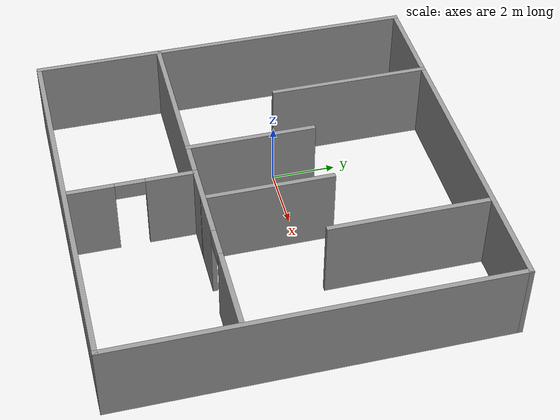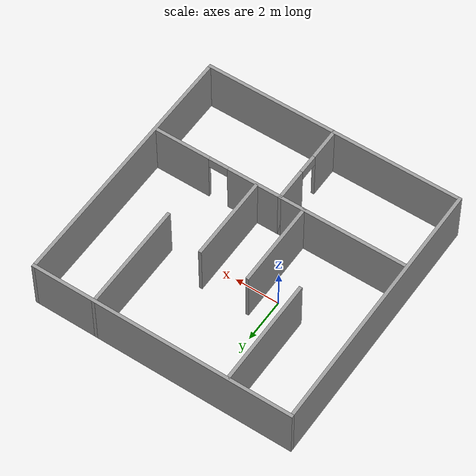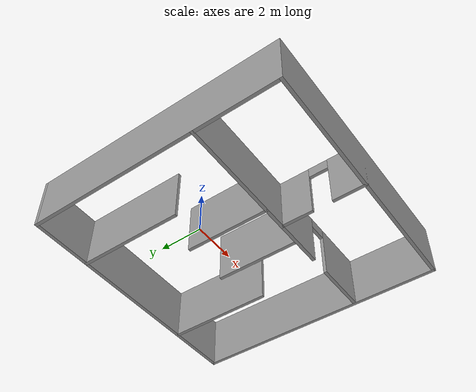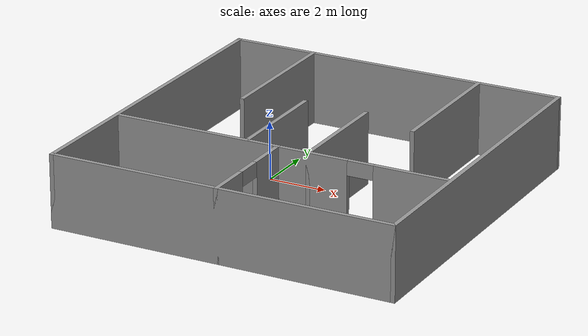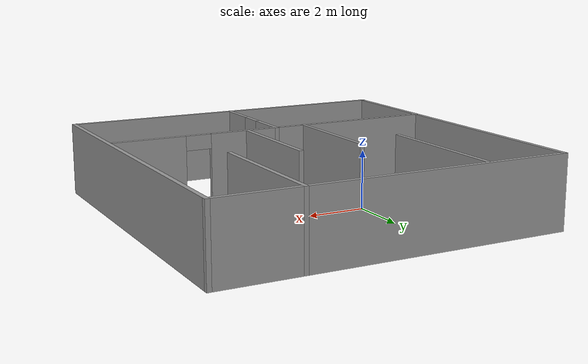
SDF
<?xml version='1.0'?>
<sdf version='1.6'>
  <model name='Lidar_Course'>
    <pose frame=''>1.88672 -0.723175 0 0 -0 0</pose>
    <link name='Wall_0'>
      <collision name='Wall_0_Collision'>
        <geometry>
          <box>
            <size>12 0.15 2.5</size>
          </box>
        </geometry>
        <pose frame=''>0 0 1.25 0 -0 0</pose>
      </collision>
      <visual name='Wall_0_Visual'>
        <pose frame=''>0 0 1.25 0 -0 0</pose>
        <geometry>
          <box>
            <size>12 0.15 2.5</size>
          </box>
        </geometry>
        <material>
          <script>
            <uri>file://media/materials/scripts/gazebo.material</uri>
            <name>Gazebo/Grey</name>
          </script>
          <ambient>1 1 1 1</ambient>
        </material>
        <meta>
          <layer>0</layer>
        </meta>
      </visual>
      <pose frame=''>-0 -5.925 0 0 -0 0</pose>
    </link>
    <link name='Wall_10'>
      <collision name='Wall_10_Collision'>
        <geometry>
          <box>
            <size>5 0.15 2.5</size>
          </box>
        </geometry>
        <pose frame=''>0 0 1.25 0 -0 0</pose>
      </collision>
      <visual name='Wall_10_Visual'>
        <pose frame=''>0 0 1.25 0 -0 0</pose>
        <geometry>
          <box>
            <size>5 0.15 2.5</size>
          </box>
        </geometry>
        <material>
          <script>
            <uri>file://media/materials/scripts/gazebo.material</uri>
            <name>Gazebo/Grey</name>
          </script>
          <ambient>1 1 1 1</ambient>
        </material>
        <meta>
          <layer>0</layer>
        </meta>
      </visual>
      <pose frame=''>-3.075 3.5 0 0 -0 -1.5708</pose>
    </link>
    <link name='Wall_13'>
      <collision name='Wall_13_Collision'>
        <geometry>
          <box>
            <size>5 0.15 2.5</size>
          </box>
        </geometry>
        <pose frame=''>0 0 1.25 0 -0 0</pose>
      </collision>
      <visual name='Wall_13_Visual'>
        <pose frame=''>0 0 1.25 0 -0 0</pose>
        <geometry>
          <box>
            <size>5 0.15 2.5</size>
          </box>
        </geometry>
        <material>
          <script>
            <uri>file://media/materials/scripts/gazebo.material</uri>
            <name>Gazebo/Grey</name>
          </script>
          <ambient>1 1 1 1</ambient>
        </material>
        <meta>
          <layer>0</layer>
        </meta>
      </visual>
      <pose frame=''>3.075 3.5 0 0 -0 -1.5708</pose>
    </link>
    <link name='Wall_3'>
      <collision name='Wall_3_Collision'>
        <geometry>
          <box>
            <size>12 0.15 2.5</size>
          </box>
        </geometry>
        <pose frame=''>0 0 1.25 0 -0 0</pose>
      </collision>
      <visual name='Wall_3_Visual'>
        <pose frame=''>0 0 1.25 0 -0 0</pose>
        <geometry>
          <box>
            <size>12 0.15 2.5</size>
          </box>
        </geometry>
        <material>
          <script>
            <uri>file://media/materials/scripts/gazebo.material</uri>
            <name>Gazebo/Grey</name>
          </script>
          <ambient>1 1 1 1</ambient>
        </material>
        <meta>
          <layer>0</layer>
        </meta>
      </visual>
      <pose frame=''>5.925 0 0 0 -0 1.5708</pose>
    </link>
    <link name='Wall_30'>
      <pose frame=''>-0.075 -4 0 0 -0 1.5708</pose>
      <visual name='Wall_30_Visual_0'>
        <pose frame=''>-1.2292 0 1.25 0 -0 0</pose>
        <geometry>
          <box>
            <size>1.5416 0.15 2.5</size>
          </box>
        </geometry>
        <material>
          <script>
            <uri>file://media/materials/scripts/gazebo.material</uri>
            <name>Gazebo/Grey</name>
          </script>
          <ambient>1 1 1 1</ambient>
        </material>
        <meta>
          <layer>0</layer>
        </meta>
      </visual>
      <collision name='Wall_30_Collision_0'>
        <geometry>
          <box>
            <size>1.5416 0.15 2.5</size>
          </box>
        </geometry>
        <pose frame=''>-1.2292 0 1.25 0 -0 0</pose>
      </collision>
      <visual name='Wall_30_Visual_1'>
        <pose frame=''>1.2208 0 1.25 0 -0 0</pose>
        <geometry>
          <box>
            <size>1.5584 0.15 2.5</size>
          </box>
        </geometry>
        <material>
          <script>
            <uri>file://media/materials/scripts/gazebo.material</uri>
            <name>Gazebo/Grey</name>
          </script>
          <ambient>1 1 1 1</ambient>
        </material>
        <meta>
          <layer>0</layer>
        </meta>
      </visual>
      <collision name='Wall_30_Collision_1'>
        <geometry>
          <box>
            <size>1.5584 0.15 2.5</size>
          </box>
        </geometry>
        <pose frame=''>1.2208 0 1.25 0 -0 0</pose>
      </collision>
      <visual name='Wall_30_Visual_2'>
        <pose frame=''>-0.0084 0 2.25 0 -0 0</pose>
        <geometry>
          <box>
            <size>0.9 0.15 0.5</size>
          </box>
        </geometry>
        <material>
          <script>
            <uri>file://media/materials/scripts/gazebo.material</uri>
            <name>Gazebo/Grey</name>
          </script>
          <ambient>1 1 1 1</ambient>
        </material>
        <meta>
          <layer>0</layer>
        </meta>
      </visual>
      <collision name='Wall_30_Collision_2'>
        <geometry>
          <box>
            <size>0.9 0.15 0.5</size>
          </box>
        </geometry>
        <pose frame=''>-0.0084 0 2.25 0 -0 0</pose>
      </collision>
    </link>
    <link name='Wall_31'>
      <collision name='Wall_31_Collision'>
        <geometry>
          <box>
            <size>6 0.15 2.5</size>
          </box>
        </geometry>
        <pose frame=''>0 0 1.25 0 -0 0</pose>
      </collision>
      <visual name='Wall_31_Visual'>
        <pose frame=''>0 0 1.25 0 -0 0</pose>
        <geometry>
          <box>
            <size>6 0.15 2.5</size>
          </box>
        </geometry>
        <material>
          <script>
            <uri>file://media/materials/scripts/gazebo.material</uri>
            <name>Gazebo/Grey</name>
          </script>
          <ambient>1 1 1 1</ambient>
        </material>
        <meta>
          <layer>0</layer>
        </meta>
      </visual>
      <pose frame=''>-3 -2.075 0 0 -0 3.14159</pose>
    </link>
    <link name='Wall_33'>
      <pose frame=''>2.85 -2.075 0 0 -0 0</pose>
      <visual name='Wall_33_Visual_0'>
        <pose frame=''>-1.72796 0 1.25 0 -0 0</pose>
        <geometry>
          <box>
            <size>2.54407 0.15 2.5</size>
          </box>
        </geometry>
        <material>
          <script>
            <uri>file://media/materials/scripts/gazebo.material</uri>
            <name>Gazebo/Grey</name>
          </script>
          <ambient>1 1 1 1</ambient>
        </material>
        <meta>
          <layer>0</layer>
        </meta>
      </visual>
      <collision name='Wall_33_Collision_0'>
        <geometry>
          <box>
            <size>2.54407 0.15 2.5</size>
          </box>
        </geometry>
        <pose frame=''>-1.72796 0 1.25 0 -0 0</pose>
      </collision>
      <visual name='Wall_33_Visual_1'>
        <pose frame=''>1.72204 0 1.25 0 -0 0</pose>
        <geometry>
          <box>
            <size>2.55593 0.15 2.5</size>
          </box>
        </geometry>
        <material>
          <script>
            <uri>file://media/materials/scripts/gazebo.material</uri>
            <name>Gazebo/Grey</name>
          </script>
          <ambient>1 1 1 1</ambient>
        </material>
        <meta>
          <layer>0</layer>
        </meta>
      </visual>
      <collision name='Wall_33_Collision_1'>
        <geometry>
          <box>
            <size>2.55593 0.15 2.5</size>
          </box>
        </geometry>
        <pose frame=''>1.72204 0 1.25 0 -0 0</pose>
      </collision>
      <visual name='Wall_33_Visual_2'>
        <pose frame=''>-0.005926 0 2.25 0 -0 0</pose>
        <geometry>
          <box>
            <size>0.9 0.15 0.5</size>
          </box>
        </geometry>
        <material>
          <script>
            <uri>file://media/materials/scripts/gazebo.material</uri>
            <name>Gazebo/Grey</name>
          </script>
          <ambient>1 1 1 1</ambient>
        </material>
        <meta>
          <layer>0</layer>
        </meta>
      </visual>
      <collision name='Wall_33_Collision_2'>
        <geometry>
          <box>
            <size>0.9 0.15 0.5</size>
          </box>
        </geometry>
        <pose frame=''>-0.005926 0 2.25 0 -0 0</pose>
      </collision>
    </link>
    <link name='Wall_4'>
      <collision name='Wall_4_Collision'>
        <geometry>
          <box>
            <size>12 0.15 2.5</size>
          </box>
        </geometry>
        <pose frame=''>0 0 1.25 0 -0 0</pose>
      </collision>
      <visual name='Wall_4_Visual'>
        <pose frame=''>0 0 1.25 0 -0 0</pose>
        <geometry>
          <box>
            <size>12 0.15 2.5</size>
          </box>
        </geometry>
        <material>
          <script>
            <uri>file://media/materials/scripts/gazebo.material</uri>
            <name>Gazebo/Grey</name>
          </script>
          <ambient>1 1 1 1</ambient>
        </material>
        <meta>
          <layer>0</layer>
        </meta>
      </visual>
      <pose frame=''>-0 5.925 0 0 -0 3.14159</pose>
    </link>
    <link name='Wall_42'>
      <collision name='Wall_42_Collision'>
        <geometry>
          <box>
            <size>4 0.15 2.5</size>
          </box>
        </geometry>
        <pose frame=''>0 0 1.25 0 -0 0</pose>
      </collision>
      <visual name='Wall_42_Visual'>
        <pose frame=''>0 0 1.25 0 -0 0</pose>
        <geometry>
          <box>
            <size>4 0.15 2.5</size>
          </box>
        </geometry>
        <material>
          <script>
            <uri>file://media/materials/scripts/gazebo.material</uri>
            <name>Gazebo/Grey</name>
          </script>
          <ambient>1 1 1 1</ambient>
        </material>
        <meta>
          <layer>0</layer>
        </meta>
      </visual>
      <pose frame=''>1.025 -0.15 0 0 -0 1.5708</pose>
    </link>
    <link name='Wall_45'>
      <collision name='Wall_45_Collision'>
        <geometry>
          <box>
            <size>4 0.15 2.5</size>
          </box>
        </geometry>
        <pose frame=''>0 0 1.25 0 -0 0</pose>
      </collision>
      <visual name='Wall_45_Visual'>
        <pose frame=''>0 0 1.25 0 -0 0</pose>
        <geometry>
          <box>
            <size>4 0.15 2.5</size>
          </box>
        </geometry>
        <material>
          <script>
            <uri>file://media/materials/scripts/gazebo.material</uri>
            <name>Gazebo/Grey</name>
          </script>
          <ambient>1 1 1 1</ambient>
        </material>
        <meta>
          <layer>0</layer>
        </meta>
      </visual>
      <pose frame=''>-1.175 -0.15 0 0 -0 1.5708</pose>
    </link>
    <link name='Wall_6'>
      <collision name='Wall_6_Collision'>
        <geometry>
          <box>
            <size>12 0.15 2.5</size>
          </box>
        </geometry>
        <pose frame=''>0 0 1.25 0 -0 0</pose>
      </collision>
      <visual name='Wall_6_Visual'>
        <pose frame=''>0 0 1.25 0 -0 0</pose>
        <geometry>
          <box>
            <size>12 0.15 2.5</size>
          </box>
        </geometry>
        <material>
          <script>
            <uri>file://media/materials/scripts/gazebo.material</uri>
            <name>Gazebo/Grey</name>
          </script>
          <ambient>1 1 1 1</ambient>
        </material>
        <meta>
          <layer>0</layer>
        </meta>
      </visual>
      <pose frame=''>-5.925 0 0 0 -0 -1.5708</pose>
    </link>
    <static>1</static>
  </model>
</sdf>
